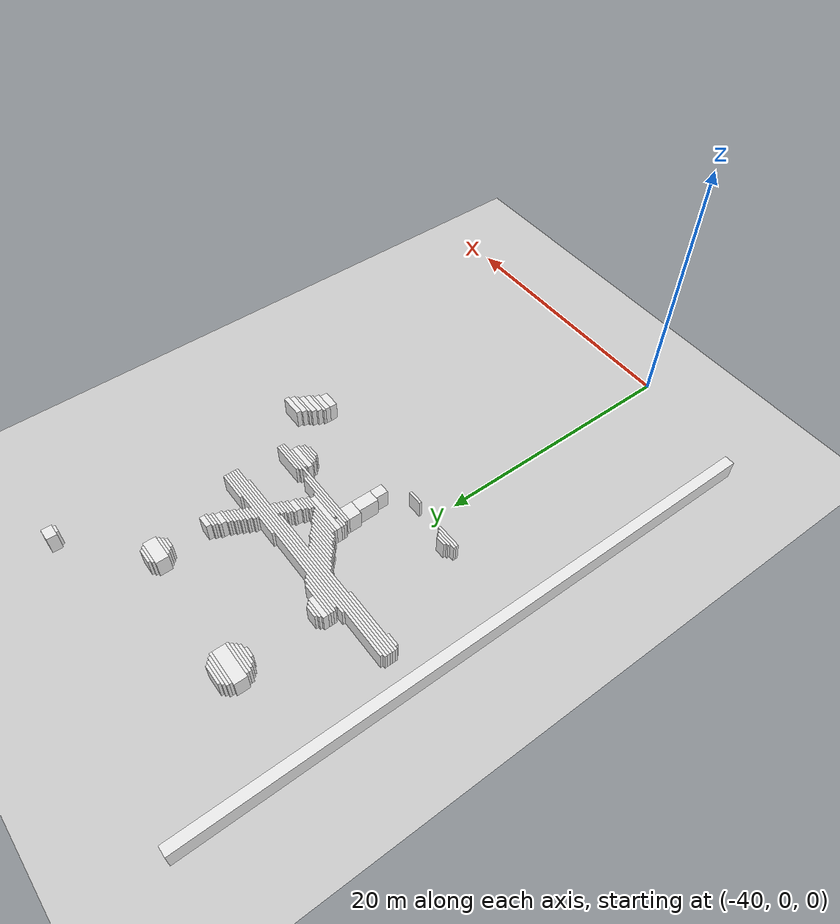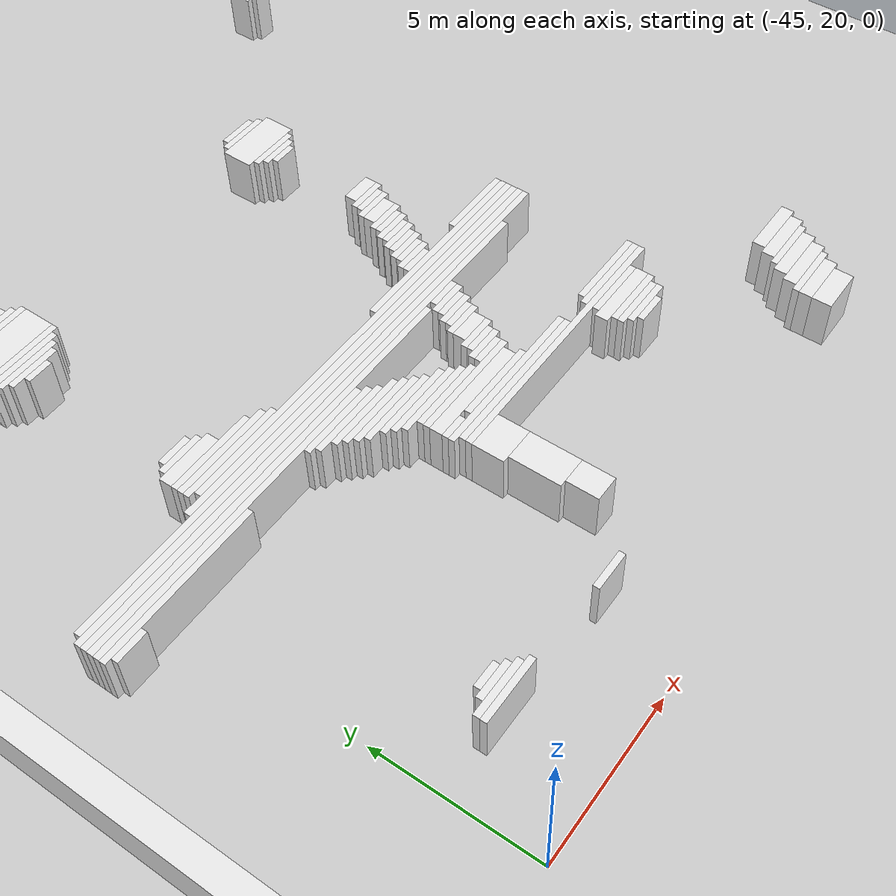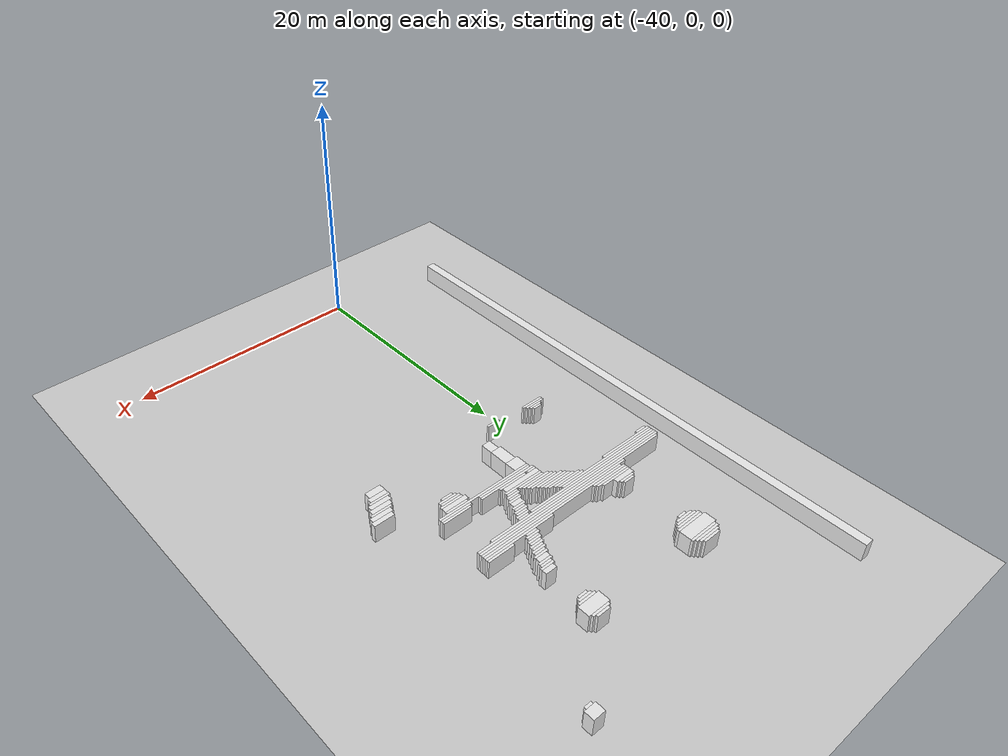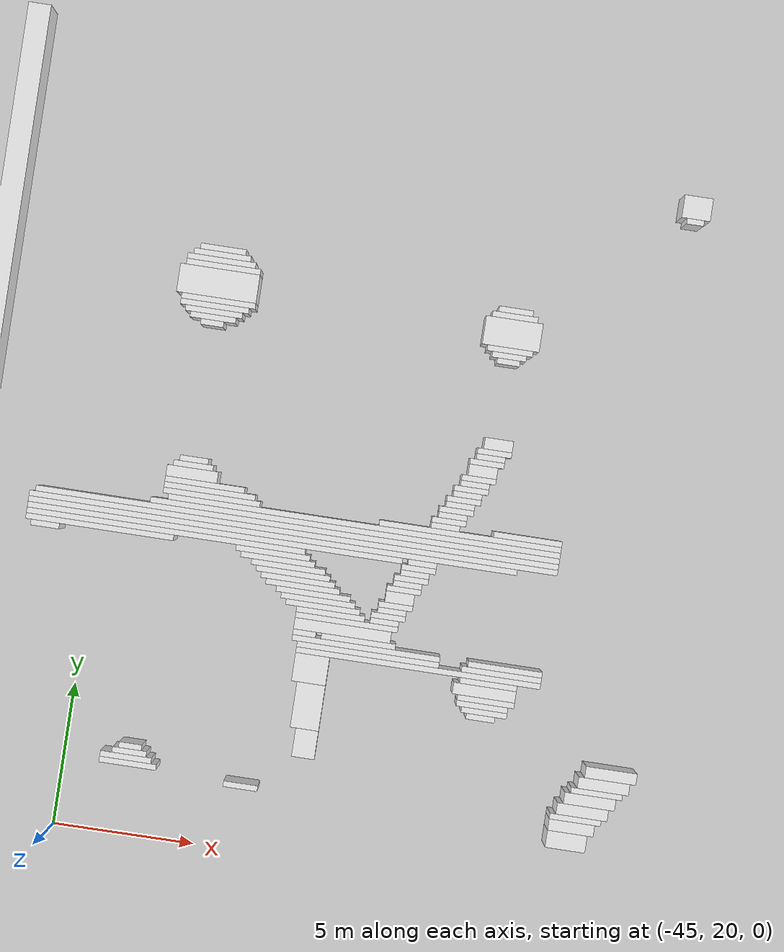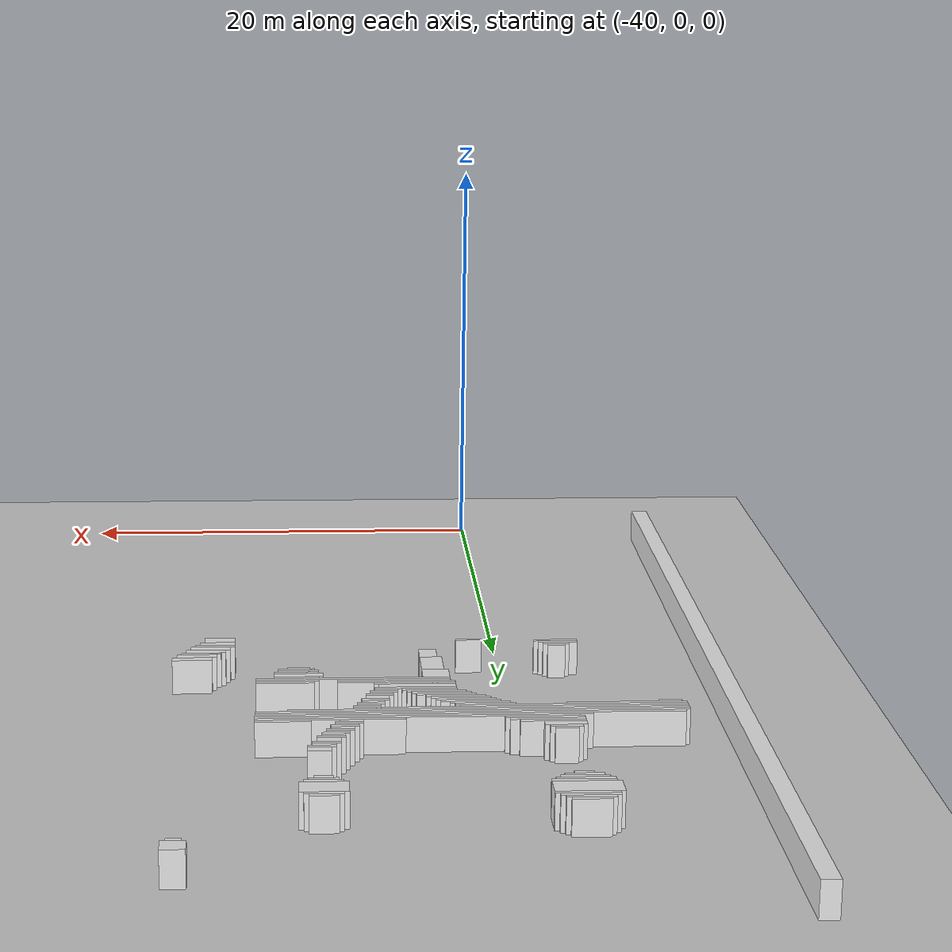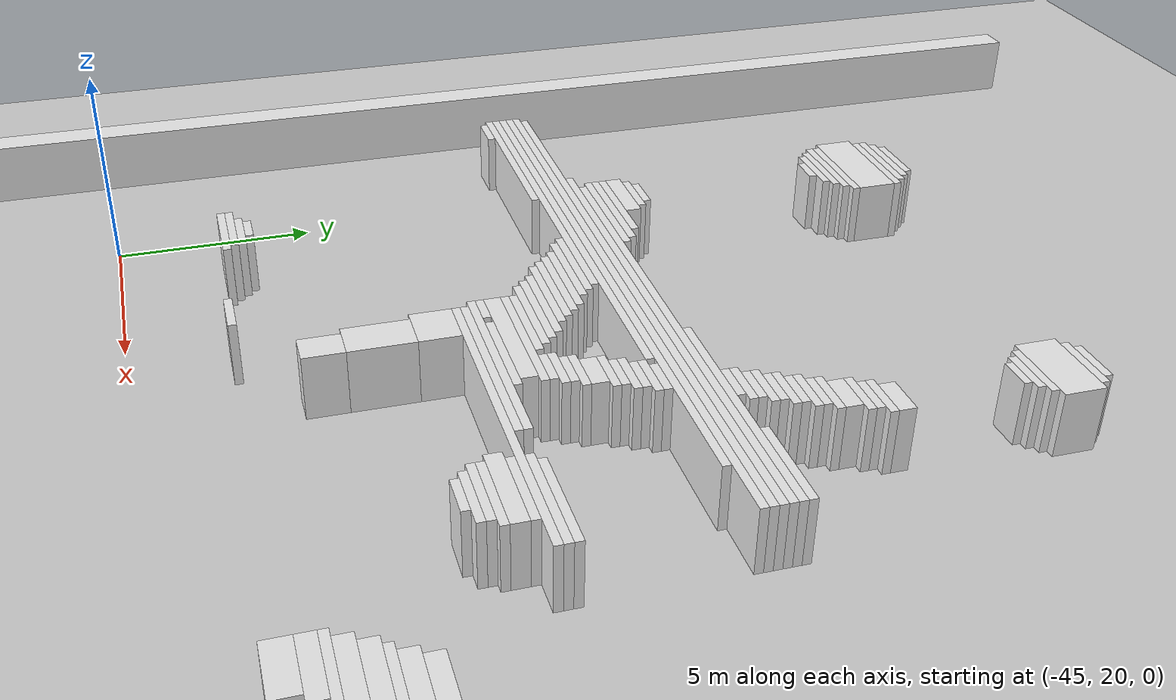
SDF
<sdf version="1.7">
 <world name="default">
  <model name="ground_plane">
   <static>1</static>
   <link name="link">
    <collision name="collision">
     <geometry><plane><normal>0 0 1</normal><size>120 120</size></plane></geometry>
    </collision>
    <visual name="visual">
     <geometry><plane><normal>0 0 1</normal><size>120 120</size></plane></geometry>
     <material>
      <script><uri>file://media/materials/scripts/gazebo.material</uri><name>Gazebo/Grey</name></script>
     </material>
    </visual>
   </link>
  </model>
  <model name="random_complex_03_model">
   <static>1</static>
   <link name="obs_76">
    <pose>-25.9000 44.8000 0.8000 0 0 0</pose>
    <collision name="obs_76_col"><geometry><box><size>1.0000 0.8000 1.6000</size></box></geometry></collision>
    <visual name="obs_76_vis">
     <geometry><box><size>1.0000 0.8000 1.6000</size></box></geometry>
     <material>
      <script><uri>file://media/materials/scripts/gazebo.material</uri><name>Gazebo/White</name></script>
     </material>
    </visual>
   </link>
   <link name="obs_83">
    <pose>-25.9000 44.3000 0.8000 0 0 0</pose>
    <collision name="obs_83_col"><geometry><box><size>0.6000 0.2000 1.6000</size></box></geometry></collision>
    <visual name="obs_83_vis">
     <geometry><box><size>0.6000 0.2000 1.6000</size></box></geometry>
     <material>
      <script><uri>file://media/materials/scripts/gazebo.material</uri><name>Gazebo/White</name></script>
     </material>
    </visual>
   </link>
   <link name="obs_166">
    <pose>-42.0000 40.9000 0.8000 0 0 0</pose>
    <collision name="obs_166_col"><geometry><box><size>1.6000 0.2000 1.6000</size></box></geometry></collision>
    <visual name="obs_166_vis">
     <geometry><box><size>1.6000 0.2000 1.6000</size></box></geometry>
     <material>
      <script><uri>file://media/materials/scripts/gazebo.material</uri><name>Gazebo/White</name></script>
     </material>
    </visual>
   </link>
   <link name="obs_170">
    <pose>-42.0000 40.7000 0.8000 0 0 0</pose>
    <collision name="obs_170_col"><geometry><box><size>2.0000 0.2000 1.6000</size></box></geometry></collision>
    <visual name="obs_170_vis">
     <geometry><box><size>2.0000 0.2000 1.6000</size></box></geometry>
     <material>
      <script><uri>file://media/materials/scripts/gazebo.material</uri><name>Gazebo/White</name></script>
     </material>
    </visual>
   </link>
   <link name="obs_174">
    <pose>-42.0000 40.5000 0.8000 0 0 0</pose>
    <collision name="obs_174_col"><geometry><box><size>2.4000 0.2000 1.6000</size></box></geometry></collision>
    <visual name="obs_174_vis">
     <geometry><box><size>2.4000 0.2000 1.6000</size></box></geometry>
     <material>
      <script><uri>file://media/materials/scripts/gazebo.material</uri><name>Gazebo/White</name></script>
     </material>
    </visual>
   </link>
   <link name="obs_179">
    <pose>-41.9000 40.3000 0.8000 0 0 0</pose>
    <collision name="obs_179_col"><geometry><box><size>2.6000 0.2000 1.6000</size></box></geometry></collision>
    <visual name="obs_179_vis">
     <geometry><box><size>2.6000 0.2000 1.6000</size></box></geometry>
     <material>
      <script><uri>file://media/materials/scripts/gazebo.material</uri><name>Gazebo/White</name></script>
     </material>
    </visual>
   </link>
   <link name="obs_180">
    <pose>-31.6000 40.3000 0.8000 0 0 0</pose>
    <collision name="obs_180_col"><geometry><box><size>1.2000 0.2000 1.6000</size></box></geometry></collision>
    <visual name="obs_180_vis">
     <geometry><box><size>1.2000 0.2000 1.6000</size></box></geometry>
     <material>
      <script><uri>file://media/materials/scripts/gazebo.material</uri><name>Gazebo/White</name></script>
     </material>
    </visual>
   </link>
   <link name="obs_186">
    <pose>-31.6000 40.1000 0.8000 0 0 0</pose>
    <collision name="obs_186_col"><geometry><box><size>1.6000 0.2000 1.6000</size></box></geometry></collision>
    <visual name="obs_186_vis">
     <geometry><box><size>1.6000 0.2000 1.6000</size></box></geometry>
     <material>
      <script><uri>file://media/materials/scripts/gazebo.material</uri><name>Gazebo/White</name></script>
     </material>
    </visual>
   </link>
   <link name="obs_206">
    <pose>-42.0000 39.7000 0.8000 0 0 0</pose>
    <collision name="obs_206_col"><geometry><box><size>2.8000 1.0000 1.6000</size></box></geometry></collision>
    <visual name="obs_206_vis">
     <geometry><box><size>2.8000 1.0000 1.6000</size></box></geometry>
     <material>
      <script><uri>file://media/materials/scripts/gazebo.material</uri><name>Gazebo/White</name></script>
     </material>
    </visual>
   </link>
   <link name="obs_213">
    <pose>-31.6000 39.5000 0.8000 0 0 0</pose>
    <collision name="obs_213_col"><geometry><box><size>2.0000 1.0000 1.6000</size></box></geometry></collision>
    <visual name="obs_213_vis">
     <geometry><box><size>2.0000 1.0000 1.6000</size></box></geometry>
     <material>
      <script><uri>file://media/materials/scripts/gazebo.material</uri><name>Gazebo/White</name></script>
     </material>
    </visual>
   </link>
   <link name="obs_215">
    <pose>-41.9000 39.1000 0.8000 0 0 0</pose>
    <collision name="obs_215_col"><geometry><box><size>2.6000 0.2000 1.6000</size></box></geometry></collision>
    <visual name="obs_215_vis">
     <geometry><box><size>2.6000 0.2000 1.6000</size></box></geometry>
     <material>
      <script><uri>file://media/materials/scripts/gazebo.material</uri><name>Gazebo/White</name></script>
     </material>
    </visual>
   </link>
   <link name="obs_222">
    <pose>-42.0000 38.9000 0.8000 0 0 0</pose>
    <collision name="obs_222_col"><geometry><box><size>2.4000 0.2000 1.6000</size></box></geometry></collision>
    <visual name="obs_222_vis">
     <geometry><box><size>2.4000 0.2000 1.6000</size></box></geometry>
     <material>
      <script><uri>file://media/materials/scripts/gazebo.material</uri><name>Gazebo/White</name></script>
     </material>
    </visual>
   </link>
   <link name="obs_223">
    <pose>-31.6000 38.9000 0.8000 0 0 0</pose>
    <collision name="obs_223_col"><geometry><box><size>1.6000 0.2000 1.6000</size></box></geometry></collision>
    <visual name="obs_223_vis">
     <geometry><box><size>1.6000 0.2000 1.6000</size></box></geometry>
     <material>
      <script><uri>file://media/materials/scripts/gazebo.material</uri><name>Gazebo/White</name></script>
     </material>
    </visual>
   </link>
   <link name="obs_229">
    <pose>-42.0000 38.7000 0.8000 0 0 0</pose>
    <collision name="obs_229_col"><geometry><box><size>2.0000 0.2000 1.6000</size></box></geometry></collision>
    <visual name="obs_229_vis">
     <geometry><box><size>2.0000 0.2000 1.6000</size></box></geometry>
     <material>
      <script><uri>file://media/materials/scripts/gazebo.material</uri><name>Gazebo/White</name></script>
     </material>
    </visual>
   </link>
   <link name="obs_230">
    <pose>-31.6000 38.7000 0.8000 0 0 0</pose>
    <collision name="obs_230_col"><geometry><box><size>1.2000 0.2000 1.6000</size></box></geometry></collision>
    <visual name="obs_230_vis">
     <geometry><box><size>1.2000 0.2000 1.6000</size></box></geometry>
     <material>
      <script><uri>file://media/materials/scripts/gazebo.material</uri><name>Gazebo/White</name></script>
     </material>
    </visual>
   </link>
   <link name="obs_237">
    <pose>-42.0000 38.5000 0.8000 0 0 0</pose>
    <collision name="obs_237_col"><geometry><box><size>1.6000 0.2000 1.6000</size></box></geometry></collision>
    <visual name="obs_237_vis">
     <geometry><box><size>1.6000 0.2000 1.6000</size></box></geometry>
     <material>
      <script><uri>file://media/materials/scripts/gazebo.material</uri><name>Gazebo/White</name></script>
     </material>
    </visual>
   </link>
   <link name="obs_238">
    <pose>-31.6000 38.5000 0.8000 0 0 0</pose>
    <collision name="obs_238_col"><geometry><box><size>0.8000 0.2000 1.6000</size></box></geometry></collision>
    <visual name="obs_238_vis">
     <geometry><box><size>0.8000 0.2000 1.6000</size></box></geometry>
     <material>
      <script><uri>file://media/materials/scripts/gazebo.material</uri><name>Gazebo/White</name></script>
     </material>
    </visual>
   </link>
   <link name="obs_242">
    <pose>-42.0000 38.3000 0.8000 0 0 0</pose>
    <collision name="obs_242_col"><geometry><box><size>0.8000 0.2000 1.6000</size></box></geometry></collision>
    <visual name="obs_242_vis">
     <geometry><box><size>0.8000 0.2000 1.6000</size></box></geometry>
     <material>
      <script><uri>file://media/materials/scripts/gazebo.material</uri><name>Gazebo/White</name></script>
     </material>
    </visual>
   </link>
   <link name="obs_312">
    <pose>-31.5000 35.6000 0.8000 0 0 0</pose>
    <collision name="obs_312_col"><geometry><box><size>1.0000 0.4000 1.6000</size></box></geometry></collision>
    <visual name="obs_312_vis">
     <geometry><box><size>1.0000 0.4000 1.6000</size></box></geometry>
     <material>
      <script><uri>file://media/materials/scripts/gazebo.material</uri><name>Gazebo/White</name></script>
     </material>
    </visual>
   </link>
   <link name="obs_319">
    <pose>-31.6000 35.3000 0.8000 0 0 0</pose>
    <collision name="obs_319_col"><geometry><box><size>1.2000 0.2000 1.6000</size></box></geometry></collision>
    <visual name="obs_319_vis">
     <geometry><box><size>1.2000 0.2000 1.6000</size></box></geometry>
     <material>
      <script><uri>file://media/materials/scripts/gazebo.material</uri><name>Gazebo/White</name></script>
     </material>
    </visual>
   </link>
   <link name="obs_328">
    <pose>-31.7000 35.1000 0.8000 0 0 0</pose>
    <collision name="obs_328_col"><geometry><box><size>1.0000 0.2000 1.6000</size></box></geometry></collision>
    <visual name="obs_328_vis">
     <geometry><box><size>1.0000 0.2000 1.6000</size></box></geometry>
     <material>
      <script><uri>file://media/materials/scripts/gazebo.material</uri><name>Gazebo/White</name></script>
     </material>
    </visual>
   </link>
   <link name="obs_336">
    <pose>-31.8000 34.9000 0.8000 0 0 0</pose>
    <collision name="obs_336_col"><geometry><box><size>1.2000 0.2000 1.6000</size></box></geometry></collision>
    <visual name="obs_336_vis">
     <geometry><box><size>1.2000 0.2000 1.6000</size></box></geometry>
     <material>
      <script><uri>file://media/materials/scripts/gazebo.material</uri><name>Gazebo/White</name></script>
     </material>
    </visual>
   </link>
   <link name="obs_355">
    <pose>-31.9000 34.6000 0.8000 0 0 0</pose>
    <collision name="obs_355_col"><geometry><box><size>1.0000 0.4000 1.6000</size></box></geometry></collision>
    <visual name="obs_355_vis">
     <geometry><box><size>1.0000 0.4000 1.6000</size></box></geometry>
     <material>
      <script><uri>file://media/materials/scripts/gazebo.material</uri><name>Gazebo/White</name></script>
     </material>
    </visual>
   </link>
   <link name="obs_365">
    <pose>-32.0000 34.3000 0.8000 0 0 0</pose>
    <collision name="obs_365_col"><geometry><box><size>1.2000 0.2000 1.6000</size></box></geometry></collision>
    <visual name="obs_365_vis">
     <geometry><box><size>1.2000 0.2000 1.6000</size></box></geometry>
     <material>
      <script><uri>file://media/materials/scripts/gazebo.material</uri><name>Gazebo/White</name></script>
     </material>
    </visual>
   </link>
   <link name="obs_374">
    <pose>-32.1000 34.1000 0.8000 0 0 0</pose>
    <collision name="obs_374_col"><geometry><box><size>1.0000 0.2000 1.6000</size></box></geometry></collision>
    <visual name="obs_374_vis">
     <geometry><box><size>1.0000 0.2000 1.6000</size></box></geometry>
     <material>
      <script><uri>file://media/materials/scripts/gazebo.material</uri><name>Gazebo/White</name></script>
     </material>
    </visual>
   </link>
   <link name="obs_380">
    <pose>-32.2000 33.9000 0.8000 0 0 0</pose>
    <collision name="obs_380_col"><geometry><box><size>1.2000 0.2000 1.6000</size></box></geometry></collision>
    <visual name="obs_380_vis">
     <geometry><box><size>1.2000 0.2000 1.6000</size></box></geometry>
     <material>
      <script><uri>file://media/materials/scripts/gazebo.material</uri><name>Gazebo/White</name></script>
     </material>
    </visual>
   </link>
   <link name="obs_389">
    <pose>-32.3000 33.7000 0.8000 0 0 0</pose>
    <collision name="obs_389_col"><geometry><box><size>1.0000 0.2000 1.6000</size></box></geometry></collision>
    <visual name="obs_389_vis">
     <geometry><box><size>1.0000 0.2000 1.6000</size></box></geometry>
     <material>
      <script><uri>file://media/materials/scripts/gazebo.material</uri><name>Gazebo/White</name></script>
     </material>
    </visual>
   </link>
   <link name="obs_395">
    <pose>-41.9000 33.5000 0.8000 0 0 0</pose>
    <collision name="obs_395_col"><geometry><box><size>1.0000 0.2000 1.6000</size></box></geometry></collision>
    <visual name="obs_395_vis">
     <geometry><box><size>1.0000 0.2000 1.6000</size></box></geometry>
     <material>
      <script><uri>file://media/materials/scripts/gazebo.material</uri><name>Gazebo/White</name></script>
     </material>
    </visual>
   </link>
   <link name="obs_396">
    <pose>-32.4000 33.5000 0.8000 0 0 0</pose>
    <collision name="obs_396_col"><geometry><box><size>1.2000 0.2000 1.6000</size></box></geometry></collision>
    <visual name="obs_396_vis">
     <geometry><box><size>1.2000 0.2000 1.6000</size></box></geometry>
     <material>
      <script><uri>file://media/materials/scripts/gazebo.material</uri><name>Gazebo/White</name></script>
     </material>
    </visual>
   </link>
   <link name="obs_405">
    <pose>-41.9000 33.3000 0.8000 0 0 0</pose>
    <collision name="obs_405_col"><geometry><box><size>1.4000 0.2000 1.6000</size></box></geometry></collision>
    <visual name="obs_405_vis">
     <geometry><box><size>1.4000 0.2000 1.6000</size></box></geometry>
     <material>
      <script><uri>file://media/materials/scripts/gazebo.material</uri><name>Gazebo/White</name></script>
     </material>
    </visual>
   </link>
   <link name="obs_406">
    <pose>-32.5000 33.3000 0.8000 0 0 0</pose>
    <collision name="obs_406_col"><geometry><box><size>1.0000 0.2000 1.6000</size></box></geometry></collision>
    <visual name="obs_406_vis">
     <geometry><box><size>1.0000 0.2000 1.6000</size></box></geometry>
     <material>
      <script><uri>file://media/materials/scripts/gazebo.material</uri><name>Gazebo/White</name></script>
     </material>
    </visual>
   </link>
   <link name="obs_414">
    <pose>-32.6000 33.1000 0.8000 0 0 0</pose>
    <collision name="obs_414_col"><geometry><box><size>1.2000 0.2000 1.6000</size></box></geometry></collision>
    <visual name="obs_414_vis">
     <geometry><box><size>1.2000 0.2000 1.6000</size></box></geometry>
     <material>
      <script><uri>file://media/materials/scripts/gazebo.material</uri><name>Gazebo/White</name></script>
     </material>
    </visual>
   </link>
   <link name="obs_419">
    <pose>-41.9000 33.0000 0.8000 0 0 0</pose>
    <collision name="obs_419_col"><geometry><box><size>1.8000 0.4000 1.6000</size></box></geometry></collision>
    <visual name="obs_419_vis">
     <geometry><box><size>1.8000 0.4000 1.6000</size></box></geometry>
     <material>
      <script><uri>file://media/materials/scripts/gazebo.material</uri><name>Gazebo/White</name></script>
     </material>
    </visual>
   </link>
   <link name="obs_421">
    <pose>-32.7000 32.9000 0.8000 0 0 0</pose>
    <collision name="obs_421_col"><geometry><box><size>1.0000 0.2000 1.6000</size></box></geometry></collision>
    <visual name="obs_421_vis">
     <geometry><box><size>1.0000 0.2000 1.6000</size></box></geometry>
     <material>
      <script><uri>file://media/materials/scripts/gazebo.material</uri><name>Gazebo/White</name></script>
     </material>
    </visual>
   </link>
   <link name="obs_430">
    <pose>-41.4000 32.7000 0.8000 0 0 0</pose>
    <collision name="obs_430_col"><geometry><box><size>2.8000 0.2000 1.6000</size></box></geometry></collision>
    <visual name="obs_430_vis">
     <geometry><box><size>2.8000 0.2000 1.6000</size></box></geometry>
     <material>
      <script><uri>file://media/materials/scripts/gazebo.material</uri><name>Gazebo/White</name></script>
     </material>
    </visual>
   </link>
   <link name="obs_431">
    <pose>-32.8000 32.7000 0.8000 0 0 0</pose>
    <collision name="obs_431_col"><geometry><box><size>1.2000 0.2000 1.6000</size></box></geometry></collision>
    <visual name="obs_431_vis">
     <geometry><box><size>1.2000 0.2000 1.6000</size></box></geometry>
     <material>
      <script><uri>file://media/materials/scripts/gazebo.material</uri><name>Gazebo/White</name></script>
     </material>
    </visual>
   </link>
   <link name="obs_438">
    <pose>-41.2000 32.5000 0.8000 0 0 0</pose>
    <collision name="obs_438_col"><geometry><box><size>3.2000 0.2000 1.6000</size></box></geometry></collision>
    <visual name="obs_438_vis">
     <geometry><box><size>3.2000 0.2000 1.6000</size></box></geometry>
     <material>
      <script><uri>file://media/materials/scripts/gazebo.material</uri><name>Gazebo/White</name></script>
     </material>
    </visual>
   </link>
   <link name="obs_439">
    <pose>-32.9000 32.5000 0.8000 0 0 0</pose>
    <collision name="obs_439_col"><geometry><box><size>1.0000 0.2000 1.6000</size></box></geometry></collision>
    <visual name="obs_439_vis">
     <geometry><box><size>1.0000 0.2000 1.6000</size></box></geometry>
     <material>
      <script><uri>file://media/materials/scripts/gazebo.material</uri><name>Gazebo/White</name></script>
     </material>
    </visual>
   </link>
   <link name="obs_440">
    <pose>-30.0000 32.5000 0.8000 0 0 0</pose>
    <collision name="obs_440_col"><geometry><box><size>2.4000 0.2000 1.6000</size></box></geometry></collision>
    <visual name="obs_440_vis">
     <geometry><box><size>2.4000 0.2000 1.6000</size></box></geometry>
     <material>
      <script><uri>file://media/materials/scripts/gazebo.material</uri><name>Gazebo/White</name></script>
     </material>
    </visual>
   </link>
   <link name="obs_447">
    <pose>-41.1000 32.3000 0.8000 0 0 0</pose>
    <collision name="obs_447_col"><geometry><box><size>3.4000 0.2000 1.6000</size></box></geometry></collision>
    <visual name="obs_447_vis">
     <geometry><box><size>3.4000 0.2000 1.6000</size></box></geometry>
     <material>
      <script><uri>file://media/materials/scripts/gazebo.material</uri><name>Gazebo/White</name></script>
     </material>
    </visual>
   </link>
   <link name="obs_448">
    <pose>-32.0000 32.3000 0.8000 0 0 0</pose>
    <collision name="obs_448_col"><geometry><box><size>6.4000 0.2000 1.6000</size></box></geometry></collision>
    <visual name="obs_448_vis">
     <geometry><box><size>6.4000 0.2000 1.6000</size></box></geometry>
     <material>
      <script><uri>file://media/materials/scripts/gazebo.material</uri><name>Gazebo/White</name></script>
     </material>
    </visual>
   </link>
   <link name="obs_455">
    <pose>-35.7000 32.1000 0.8000 0 0 0</pose>
    <collision name="obs_455_col"><geometry><box><size>13.8000 0.2000 1.6000</size></box></geometry></collision>
    <visual name="obs_455_vis">
     <geometry><box><size>13.8000 0.2000 1.6000</size></box></geometry>
     <material>
      <script><uri>file://media/materials/scripts/gazebo.material</uri><name>Gazebo/White</name></script>
     </material>
    </visual>
   </link>
   <link name="obs_463">
    <pose>-36.0000 31.9000 0.8000 0 0 0</pose>
    <collision name="obs_463_col"><geometry><box><size>14.4000 0.2000 1.6000</size></box></geometry></collision>
    <visual name="obs_463_vis">
     <geometry><box><size>14.4000 0.2000 1.6000</size></box></geometry>
     <material>
      <script><uri>file://media/materials/scripts/gazebo.material</uri><name>Gazebo/White</name></script>
     </material>
    </visual>
   </link>
   <link name="obs_471">
    <pose>-38.0000 31.7000 0.8000 0 0 0</pose>
    <collision name="obs_471_col"><geometry><box><size>18.4000 0.2000 1.6000</size></box></geometry></collision>
    <visual name="obs_471_vis">
     <geometry><box><size>18.4000 0.2000 1.6000</size></box></geometry>
     <material>
      <script><uri>file://media/materials/scripts/gazebo.material</uri><name>Gazebo/White</name></script>
     </material>
    </visual>
   </link>
   <link name="obs_480">
    <pose>-38.1000 31.5000 0.8000 0 0 0</pose>
    <collision name="obs_480_col"><geometry><box><size>18.6000 0.2000 1.6000</size></box></geometry></collision>
    <visual name="obs_480_vis">
     <geometry><box><size>18.6000 0.2000 1.6000</size></box></geometry>
     <material>
      <script><uri>file://media/materials/scripts/gazebo.material</uri><name>Gazebo/White</name></script>
     </material>
    </visual>
   </link>
   <link name="obs_490">
    <pose>-38.8000 31.3000 0.8000 0 0 0</pose>
    <collision name="obs_490_col"><geometry><box><size>17.2000 0.2000 1.6000</size></box></geometry></collision>
    <visual name="obs_490_vis">
     <geometry><box><size>17.2000 0.2000 1.6000</size></box></geometry>
     <material>
      <script><uri>file://media/materials/scripts/gazebo.material</uri><name>Gazebo/White</name></script>
     </material>
    </visual>
   </link>
   <link name="obs_495">
    <pose>-40.8000 31.1000 0.8000 0 0 0</pose>
    <collision name="obs_495_col"><geometry><box><size>13.2000 0.2000 1.6000</size></box></geometry></collision>
    <visual name="obs_495_vis">
     <geometry><box><size>13.2000 0.2000 1.6000</size></box></geometry>
     <material>
      <script><uri>file://media/materials/scripts/gazebo.material</uri><name>Gazebo/White</name></script>
     </material>
    </visual>
   </link>
   <link name="obs_496">
    <pose>-33.5000 31.1000 0.8000 0 0 0</pose>
    <collision name="obs_496_col"><geometry><box><size>1.0000 0.2000 1.6000</size></box></geometry></collision>
    <visual name="obs_496_vis">
     <geometry><box><size>1.0000 0.2000 1.6000</size></box></geometry>
     <material>
      <script><uri>file://media/materials/scripts/gazebo.material</uri><name>Gazebo/White</name></script>
     </material>
    </visual>
   </link>
   <link name="obs_502">
    <pose>-42.5000 30.9000 0.8000 0 0 0</pose>
    <collision name="obs_502_col"><geometry><box><size>9.8000 0.2000 1.6000</size></box></geometry></collision>
    <visual name="obs_502_vis">
     <geometry><box><size>9.8000 0.2000 1.6000</size></box></geometry>
     <material>
      <script><uri>file://media/materials/scripts/gazebo.material</uri><name>Gazebo/White</name></script>
     </material>
    </visual>
   </link>
   <link name="obs_503">
    <pose>-33.6000 30.9000 0.8000 0 0 0</pose>
    <collision name="obs_503_col"><geometry><box><size>1.2000 0.2000 1.6000</size></box></geometry></collision>
    <visual name="obs_503_vis">
     <geometry><box><size>1.2000 0.2000 1.6000</size></box></geometry>
     <material>
      <script><uri>file://media/materials/scripts/gazebo.material</uri><name>Gazebo/White</name></script>
     </material>
    </visual>
   </link>
   <link name="obs_508">
    <pose>-44.8000 30.7000 0.8000 0 0 0</pose>
    <collision name="obs_508_col"><geometry><box><size>5.2000 0.2000 1.6000</size></box></geometry></collision>
    <visual name="obs_508_vis">
     <geometry><box><size>5.2000 0.2000 1.6000</size></box></geometry>
     <material>
      <script><uri>file://media/materials/scripts/gazebo.material</uri><name>Gazebo/White</name></script>
     </material>
    </visual>
   </link>
   <link name="obs_509">
    <pose>-38.7000 30.7000 0.8000 0 0 0</pose>
    <collision name="obs_509_col"><geometry><box><size>2.6000 0.2000 1.6000</size></box></geometry></collision>
    <visual name="obs_509_vis">
     <geometry><box><size>2.6000 0.2000 1.6000</size></box></geometry>
     <material>
      <script><uri>file://media/materials/scripts/gazebo.material</uri><name>Gazebo/White</name></script>
     </material>
    </visual>
   </link>
   <link name="obs_510">
    <pose>-33.7000 30.7000 0.8000 0 0 0</pose>
    <collision name="obs_510_col"><geometry><box><size>1.0000 0.2000 1.6000</size></box></geometry></collision>
    <visual name="obs_510_vis">
     <geometry><box><size>1.0000 0.2000 1.6000</size></box></geometry>
     <material>
      <script><uri>file://media/materials/scripts/gazebo.material</uri><name>Gazebo/White</name></script>
     </material>
    </visual>
   </link>
   <link name="obs_515">
    <pose>-46.7000 30.5000 0.8000 0 0 0</pose>
    <collision name="obs_515_col"><geometry><box><size>1.0000 0.2000 1.6000</size></box></geometry></collision>
    <visual name="obs_515_vis">
     <geometry><box><size>1.0000 0.2000 1.6000</size></box></geometry>
     <material>
      <script><uri>file://media/materials/scripts/gazebo.material</uri><name>Gazebo/White</name></script>
     </material>
    </visual>
   </link>
   <link name="obs_516">
    <pose>-38.5000 30.5000 0.8000 0 0 0</pose>
    <collision name="obs_516_col"><geometry><box><size>2.6000 0.2000 1.6000</size></box></geometry></collision>
    <visual name="obs_516_vis">
     <geometry><box><size>2.6000 0.2000 1.6000</size></box></geometry>
     <material>
      <script><uri>file://media/materials/scripts/gazebo.material</uri><name>Gazebo/White</name></script>
     </material>
    </visual>
   </link>
   <link name="obs_517">
    <pose>-33.8000 30.5000 0.8000 0 0 0</pose>
    <collision name="obs_517_col"><geometry><box><size>1.2000 0.2000 1.6000</size></box></geometry></collision>
    <visual name="obs_517_vis">
     <geometry><box><size>1.2000 0.2000 1.6000</size></box></geometry>
     <material>
      <script><uri>file://media/materials/scripts/gazebo.material</uri><name>Gazebo/White</name></script>
     </material>
    </visual>
   </link>
   <link name="obs_523">
    <pose>-38.1000 30.3000 0.8000 0 0 0</pose>
    <collision name="obs_523_col"><geometry><box><size>2.6000 0.2000 1.6000</size></box></geometry></collision>
    <visual name="obs_523_vis">
     <geometry><box><size>2.6000 0.2000 1.6000</size></box></geometry>
     <material>
      <script><uri>file://media/materials/scripts/gazebo.material</uri><name>Gazebo/White</name></script>
     </material>
    </visual>
   </link>
   <link name="obs_524">
    <pose>-33.9000 30.3000 0.8000 0 0 0</pose>
    <collision name="obs_524_col"><geometry><box><size>1.0000 0.2000 1.6000</size></box></geometry></collision>
    <visual name="obs_524_vis">
     <geometry><box><size>1.0000 0.2000 1.6000</size></box></geometry>
     <material>
      <script><uri>file://media/materials/scripts/gazebo.material</uri><name>Gazebo/White</name></script>
     </material>
    </visual>
   </link>
   <link name="obs_532">
    <pose>-37.9000 30.1000 0.8000 0 0 0</pose>
    <collision name="obs_532_col"><geometry><box><size>2.6000 0.2000 1.6000</size></box></geometry></collision>
    <visual name="obs_532_vis">
     <geometry><box><size>2.6000 0.2000 1.6000</size></box></geometry>
     <material>
      <script><uri>file://media/materials/scripts/gazebo.material</uri><name>Gazebo/White</name></script>
     </material>
    </visual>
   </link>
   <link name="obs_533">
    <pose>-34.0000 30.1000 0.8000 0 0 0</pose>
    <collision name="obs_533_col"><geometry><box><size>1.2000 0.2000 1.6000</size></box></geometry></collision>
    <visual name="obs_533_vis">
     <geometry><box><size>1.2000 0.2000 1.6000</size></box></geometry>
     <material>
      <script><uri>file://media/materials/scripts/gazebo.material</uri><name>Gazebo/White</name></script>
     </material>
    </visual>
   </link>
   <link name="obs_539">
    <pose>-37.7000 29.9000 0.8000 0 0 0</pose>
    <collision name="obs_539_col"><geometry><box><size>2.6000 0.2000 1.6000</size></box></geometry></collision>
    <visual name="obs_539_vis">
     <geometry><box><size>2.6000 0.2000 1.6000</size></box></geometry>
     <material>
      <script><uri>file://media/materials/scripts/gazebo.material</uri><name>Gazebo/White</name></script>
     </material>
    </visual>
   </link>
   <link name="obs_547">
    <pose>-34.1000 29.8000 0.8000 0 0 0</pose>
    <collision name="obs_547_col"><geometry><box><size>1.0000 0.4000 1.6000</size></box></geometry></collision>
    <visual name="obs_547_vis">
     <geometry><box><size>1.0000 0.4000 1.6000</size></box></geometry>
     <material>
      <script><uri>file://media/materials/scripts/gazebo.material</uri><name>Gazebo/White</name></script>
     </material>
    </visual>
   </link>
   <link name="obs_549">
    <pose>-37.5000 29.7000 0.8000 0 0 0</pose>
    <collision name="obs_549_col"><geometry><box><size>2.6000 0.2000 1.6000</size></box></geometry></collision>
    <visual name="obs_549_vis">
     <geometry><box><size>2.6000 0.2000 1.6000</size></box></geometry>
     <material>
      <script><uri>file://media/materials/scripts/gazebo.material</uri><name>Gazebo/White</name></script>
     </material>
    </visual>
   </link>
   <link name="obs_557">
    <pose>-37.1000 29.5000 0.8000 0 0 0</pose>
    <collision name="obs_557_col"><geometry><box><size>2.6000 0.2000 1.6000</size></box></geometry></collision>
    <visual name="obs_557_vis">
     <geometry><box><size>2.6000 0.2000 1.6000</size></box></geometry>
     <material>
      <script><uri>file://media/materials/scripts/gazebo.material</uri><name>Gazebo/White</name></script>
     </material>
    </visual>
   </link>
   <link name="obs_558">
    <pose>-34.2000 29.5000 0.8000 0 0 0</pose>
    <collision name="obs_558_col"><geometry><box><size>1.2000 0.2000 1.6000</size></box></geometry></collision>
    <visual name="obs_558_vis">
     <geometry><box><size>1.2000 0.2000 1.6000</size></box></geometry>
     <material>
      <script><uri>file://media/materials/scripts/gazebo.material</uri><name>Gazebo/White</name></script>
     </material>
    </visual>
   </link>
   <link name="obs_566">
    <pose>-36.9000 29.3000 0.8000 0 0 0</pose>
    <collision name="obs_566_col"><geometry><box><size>2.6000 0.2000 1.6000</size></box></geometry></collision>
    <visual name="obs_566_vis">
     <geometry><box><size>2.6000 0.2000 1.6000</size></box></geometry>
     <material>
      <script><uri>file://media/materials/scripts/gazebo.material</uri><name>Gazebo/White</name></script>
     </material>
    </visual>
   </link>
   <link name="obs_567">
    <pose>-34.3000 29.3000 0.8000 0 0 0</pose>
    <collision name="obs_567_col"><geometry><box><size>1.0000 0.2000 1.6000</size></box></geometry></collision>
    <visual name="obs_567_vis">
     <geometry><box><size>1.0000 0.2000 1.6000</size></box></geometry>
     <material>
      <script><uri>file://media/materials/scripts/gazebo.material</uri><name>Gazebo/White</name></script>
     </material>
    </visual>
   </link>
   <link name="obs_575">
    <pose>-36.7000 29.1000 0.8000 0 0 0</pose>
    <collision name="obs_575_col"><geometry><box><size>2.6000 0.2000 1.6000</size></box></geometry></collision>
    <visual name="obs_575_vis">
     <geometry><box><size>2.6000 0.2000 1.6000</size></box></geometry>
     <material>
      <script><uri>file://media/materials/scripts/gazebo.material</uri><name>Gazebo/White</name></script>
     </material>
    </visual>
   </link>
   <link name="obs_576">
    <pose>-34.4000 29.1000 0.8000 0 0 0</pose>
    <collision name="obs_576_col"><geometry><box><size>1.2000 0.2000 1.6000</size></box></geometry></collision>
    <visual name="obs_576_vis">
     <geometry><box><size>1.2000 0.2000 1.6000</size></box></geometry>
     <material>
      <script><uri>file://media/materials/scripts/gazebo.material</uri><name>Gazebo/White</name></script>
     </material>
    </visual>
   </link>
   <link name="obs_581">
    <pose>-36.4000 28.9000 0.8000 0 0 0</pose>
    <collision name="obs_581_col"><geometry><box><size>2.4000 0.2000 1.6000</size></box></geometry></collision>
    <visual name="obs_581_vis">
     <geometry><box><size>2.4000 0.2000 1.6000</size></box></geometry>
     <material>
      <script><uri>file://media/materials/scripts/gazebo.material</uri><name>Gazebo/White</name></script>
     </material>
    </visual>
   </link>
   <link name="obs_582">
    <pose>-34.5000 28.9000 0.8000 0 0 0</pose>
    <collision name="obs_582_col"><geometry><box><size>1.0000 0.2000 1.6000</size></box></geometry></collision>
    <visual name="obs_582_vis">
     <geometry><box><size>1.0000 0.2000 1.6000</size></box></geometry>
     <material>
      <script><uri>file://media/materials/scripts/gazebo.material</uri><name>Gazebo/White</name></script>
     </material>
    </visual>
   </link>
   <link name="obs_589">
    <pose>-35.8000 28.7000 0.8000 0 0 0</pose>
    <collision name="obs_589_col"><geometry><box><size>3.6000 0.2000 1.6000</size></box></geometry></collision>
    <visual name="obs_589_vis">
     <geometry><box><size>3.6000 0.2000 1.6000</size></box></geometry>
     <material>
      <script><uri>file://media/materials/scripts/gazebo.material</uri><name>Gazebo/White</name></script>
     </material>
    </visual>
   </link>
   <link name="obs_600">
    <pose>-35.9000 28.4000 0.8000 0 0 0</pose>
    <collision name="obs_600_col"><geometry><box><size>3.4000 0.4000 1.6000</size></box></geometry></collision>
    <visual name="obs_600_vis">
     <geometry><box><size>3.4000 0.4000 1.6000</size></box></geometry>
     <material>
      <script><uri>file://media/materials/scripts/gazebo.material</uri><name>Gazebo/White</name></script>
     </material>
    </visual>
   </link>
   <link name="obs_608">
    <pose>-37.2000 28.1000 0.8000 0 0 0</pose>
    <collision name="obs_608_col"><geometry><box><size>0.8000 0.2000 1.6000</size></box></geometry></collision>
    <visual name="obs_608_vis">
     <geometry><box><size>0.8000 0.2000 1.6000</size></box></geometry>
     <material>
      <script><uri>file://media/materials/scripts/gazebo.material</uri><name>Gazebo/White</name></script>
     </material>
    </visual>
   </link>
   <link name="obs_609">
    <pose>-35.3000 28.1000 0.8000 0 0 0</pose>
    <collision name="obs_609_col"><geometry><box><size>2.6000 0.2000 1.6000</size></box></geometry></collision>
    <visual name="obs_609_vis">
     <geometry><box><size>2.6000 0.2000 1.6000</size></box></geometry>
     <material>
      <script><uri>file://media/materials/scripts/gazebo.material</uri><name>Gazebo/White</name></script>
     </material>
    </visual>
   </link>
   <link name="obs_614">
    <pose>-35.0000 27.9000 0.8000 0 0 0</pose>
    <collision name="obs_614_col"><geometry><box><size>5.2000 0.2000 1.6000</size></box></geometry></collision>
    <visual name="obs_614_vis">
     <geometry><box><size>5.2000 0.2000 1.6000</size></box></geometry>
     <material>
      <script><uri>file://media/materials/scripts/gazebo.material</uri><name>Gazebo/White</name></script>
     </material>
    </visual>
   </link>
   <link name="obs_615">
    <pose>-30.1000 27.9000 0.8000 0 0 0</pose>
    <collision name="obs_615_col"><geometry><box><size>2.6000 0.2000 1.6000</size></box></geometry></collision>
    <visual name="obs_615_vis">
     <geometry><box><size>2.6000 0.2000 1.6000</size></box></geometry>
     <material>
      <script><uri>file://media/materials/scripts/gazebo.material</uri><name>Gazebo/White</name></script>
     </material>
    </visual>
   </link>
   <link name="obs_624">
    <pose>-34.9000 27.7000 0.8000 0 0 0</pose>
    <collision name="obs_624_col"><geometry><box><size>5.0000 0.2000 1.6000</size></box></geometry></collision>
    <visual name="obs_624_vis">
     <geometry><box><size>5.0000 0.2000 1.6000</size></box></geometry>
     <material>
      <script><uri>file://media/materials/scripts/gazebo.material</uri><name>Gazebo/White</name></script>
     </material>
    </visual>
   </link>
   <link name="obs_625">
    <pose>-30.2000 27.7000 0.8000 0 0 0</pose>
    <collision name="obs_625_col"><geometry><box><size>2.8000 0.2000 1.6000</size></box></geometry></collision>
    <visual name="obs_625_vis">
     <geometry><box><size>2.8000 0.2000 1.6000</size></box></geometry>
     <material>
      <script><uri>file://media/materials/scripts/gazebo.material</uri><name>Gazebo/White</name></script>
     </material>
    </visual>
   </link>
   <link name="obs_630">
    <pose>-33.1000 27.5000 0.8000 0 0 0</pose>
    <collision name="obs_630_col"><geometry><box><size>8.6000 0.2000 1.6000</size></box></geometry></collision>
    <visual name="obs_630_vis">
     <geometry><box><size>8.6000 0.2000 1.6000</size></box></geometry>
     <material>
      <script><uri>file://media/materials/scripts/gazebo.material</uri><name>Gazebo/White</name></script>
     </material>
    </visual>
   </link>
   <link name="obs_636">
    <pose>-30.6000 27.3000 0.8000 0 0 0</pose>
    <collision name="obs_636_col"><geometry><box><size>2.0000 0.2000 1.6000</size></box></geometry></collision>
    <visual name="obs_636_vis">
     <geometry><box><size>2.0000 0.2000 1.6000</size></box></geometry>
     <material>
      <script><uri>file://media/materials/scripts/gazebo.material</uri><name>Gazebo/White</name></script>
     </material>
    </visual>
   </link>
   <link name="obs_650">
    <pose>-30.7000 27.0000 0.8000 0 0 0</pose>
    <collision name="obs_650_col"><geometry><box><size>2.2000 0.4000 1.6000</size></box></geometry></collision>
    <visual name="obs_650_vis">
     <geometry><box><size>2.2000 0.4000 1.6000</size></box></geometry>
     <material>
      <script><uri>file://media/materials/scripts/gazebo.material</uri><name>Gazebo/White</name></script>
     </material>
    </visual>
   </link>
   <link name="obs_662">
    <pose>-30.6000 26.7000 0.8000 0 0 0</pose>
    <collision name="obs_662_col"><geometry><box><size>2.0000 0.2000 1.6000</size></box></geometry></collision>
    <visual name="obs_662_vis">
     <geometry><box><size>2.0000 0.2000 1.6000</size></box></geometry>
     <material>
      <script><uri>file://media/materials/scripts/gazebo.material</uri><name>Gazebo/White</name></script>
     </material>
    </visual>
   </link>
   <link name="obs_670">
    <pose>-36.8000 26.9000 0.8000 0 0 0</pose>
    <collision name="obs_670_col"><geometry><box><size>1.2000 1.0000 1.6000</size></box></geometry></collision>
    <visual name="obs_670_vis">
     <geometry><box><size>1.2000 1.0000 1.6000</size></box></geometry>
     <material>
      <script><uri>file://media/materials/scripts/gazebo.material</uri><name>Gazebo/White</name></script>
     </material>
    </visual>
   </link>
   <link name="obs_673">
    <pose>-30.7000 26.5000 0.8000 0 0 0</pose>
    <collision name="obs_673_col"><geometry><box><size>1.8000 0.2000 1.6000</size></box></geometry></collision>
    <visual name="obs_673_vis">
     <geometry><box><size>1.8000 0.2000 1.6000</size></box></geometry>
     <material>
      <script><uri>file://media/materials/scripts/gazebo.material</uri><name>Gazebo/White</name></script>
     </material>
    </visual>
   </link>
   <link name="obs_681">
    <pose>-30.6000 26.3000 0.8000 0 0 0</pose>
    <collision name="obs_681_col"><geometry><box><size>1.6000 0.2000 1.6000</size></box></geometry></collision>
    <visual name="obs_681_vis">
     <geometry><box><size>1.6000 0.2000 1.6000</size></box></geometry>
     <material>
      <script><uri>file://media/materials/scripts/gazebo.material</uri><name>Gazebo/White</name></script>
     </material>
    </visual>
   </link>
   <link name="obs_687">
    <pose>-30.7000 26.1000 0.8000 0 0 0</pose>
    <collision name="obs_687_col"><geometry><box><size>1.0000 0.2000 1.6000</size></box></geometry></collision>
    <visual name="obs_687_vis">
     <geometry><box><size>1.0000 0.2000 1.6000</size></box></geometry>
     <material>
      <script><uri>file://media/materials/scripts/gazebo.material</uri><name>Gazebo/White</name></script>
     </material>
    </visual>
   </link>
   <link name="obs_729">
    <pose>-36.7000 25.6000 0.8000 0 0 0</pose>
    <collision name="obs_729_col"><geometry><box><size>1.0000 1.6000 1.6000</size></box></geometry></collision>
    <visual name="obs_729_vis">
     <geometry><box><size>1.0000 1.6000 1.6000</size></box></geometry>
     <material>
      <script><uri>file://media/materials/scripts/gazebo.material</uri><name>Gazebo/White</name></script>
     </material>
    </visual>
   </link>
   <link name="obs_738">
    <pose>-25.9000 24.8000 0.8000 0 0 0</pose>
    <collision name="obs_738_col"><geometry><box><size>1.8000 0.4000 1.6000</size></box></geometry></collision>
    <visual name="obs_738_vis">
     <geometry><box><size>1.8000 0.4000 1.6000</size></box></geometry>
     <material>
      <script><uri>file://media/materials/scripts/gazebo.material</uri><name>Gazebo/White</name></script>
     </material>
    </visual>
   </link>
   <link name="obs_752">
    <pose>-26.1000 24.4000 0.8000 0 0 0</pose>
    <collision name="obs_752_col"><geometry><box><size>1.8000 0.4000 1.6000</size></box></geometry></collision>
    <visual name="obs_752_vis">
     <geometry><box><size>1.8000 0.4000 1.6000</size></box></geometry>
     <material>
      <script><uri>file://media/materials/scripts/gazebo.material</uri><name>Gazebo/White</name></script>
     </material>
    </visual>
   </link>
   <link name="obs_761">
    <pose>-26.3000 24.1000 0.8000 0 0 0</pose>
    <collision name="obs_761_col"><geometry><box><size>1.8000 0.2000 1.6000</size></box></geometry></collision>
    <visual name="obs_761_vis">
     <geometry><box><size>1.8000 0.2000 1.6000</size></box></geometry>
     <material>
      <script><uri>file://media/materials/scripts/gazebo.material</uri><name>Gazebo/White</name></script>
     </material>
    </visual>
   </link>
   <link name="obs_768">
    <pose>-36.6000 24.3000 0.8000 0 0 0</pose>
    <collision name="obs_768_col"><geometry><box><size>0.8000 1.0000 1.6000</size></box></geometry></collision>
    <visual name="obs_768_vis">
     <geometry><box><size>0.8000 1.0000 1.6000</size></box></geometry>
     <material>
      <script><uri>file://media/materials/scripts/gazebo.material</uri><name>Gazebo/White</name></script>
     </material>
    </visual>
   </link>
   <link name="obs_774">
    <pose>-26.5000 23.8000 0.8000 0 0 0</pose>
    <collision name="obs_774_col"><geometry><box><size>1.8000 0.4000 1.6000</size></box></geometry></collision>
    <visual name="obs_774_vis">
     <geometry><box><size>1.8000 0.4000 1.6000</size></box></geometry>
     <material>
      <script><uri>file://media/materials/scripts/gazebo.material</uri><name>Gazebo/White</name></script>
     </material>
    </visual>
   </link>
   <link name="obs_789">
    <pose>-26.7000 23.4000 0.8000 0 0 0</pose>
    <collision name="obs_789_col"><geometry><box><size>1.8000 0.4000 1.6000</size></box></geometry></collision>
    <visual name="obs_789_vis">
     <geometry><box><size>1.8000 0.4000 1.6000</size></box></geometry>
     <material>
      <script><uri>file://media/materials/scripts/gazebo.material</uri><name>Gazebo/White</name></script>
     </material>
    </visual>
   </link>
   <link name="obs_791">
    <pose>-42.6000 23.3000 0.8000 0 0 0</pose>
    <collision name="obs_791_col"><geometry><box><size>0.8000 0.2000 1.6000</size></box></geometry></collision>
    <visual name="obs_791_vis">
     <geometry><box><size>0.8000 0.2000 1.6000</size></box></geometry>
     <material>
      <script><uri>file://media/materials/scripts/gazebo.material</uri><name>Gazebo/White</name></script>
     </material>
    </visual>
   </link>
   <link name="obs_799">
    <pose>-42.6000 23.1000 0.8000 0 0 0</pose>
    <collision name="obs_799_col"><geometry><box><size>1.2000 0.2000 1.6000</size></box></geometry></collision>
    <visual name="obs_799_vis">
     <geometry><box><size>1.2000 0.2000 1.6000</size></box></geometry>
     <material>
      <script><uri>file://media/materials/scripts/gazebo.material</uri><name>Gazebo/White</name></script>
     </material>
    </visual>
   </link>
   <link name="obs_800">
    <pose>-26.9000 23.1000 0.8000 0 0 0</pose>
    <collision name="obs_800_col"><geometry><box><size>1.8000 0.2000 1.6000</size></box></geometry></collision>
    <visual name="obs_800_vis">
     <geometry><box><size>1.8000 0.2000 1.6000</size></box></geometry>
     <material>
      <script><uri>file://media/materials/scripts/gazebo.material</uri><name>Gazebo/White</name></script>
     </material>
    </visual>
   </link>
   <link name="obs_808">
    <pose>-42.7000 22.9000 0.8000 0 0 0</pose>
    <collision name="obs_808_col"><geometry><box><size>1.8000 0.2000 1.6000</size></box></geometry></collision>
    <visual name="obs_808_vis">
     <geometry><box><size>1.8000 0.2000 1.6000</size></box></geometry>
     <material>
      <script><uri>file://media/materials/scripts/gazebo.material</uri><name>Gazebo/White</name></script>
     </material>
    </visual>
   </link>
   <link name="obs_816">
    <pose>-27.0000 22.8000 0.8000 0 0 0</pose>
    <collision name="obs_816_col"><geometry><box><size>1.6000 0.4000 1.6000</size></box></geometry></collision>
    <visual name="obs_816_vis">
     <geometry><box><size>1.6000 0.4000 1.6000</size></box></geometry>
     <material>
      <script><uri>file://media/materials/scripts/gazebo.material</uri><name>Gazebo/White</name></script>
     </material>
    </visual>
   </link>
   <link name="obs_818">
    <pose>-42.6000 22.7000 0.8000 0 0 0</pose>
    <collision name="obs_818_col"><geometry><box><size>2.0000 0.2000 1.6000</size></box></geometry></collision>
    <visual name="obs_818_vis">
     <geometry><box><size>2.0000 0.2000 1.6000</size></box></geometry>
     <material>
      <script><uri>file://media/materials/scripts/gazebo.material</uri><name>Gazebo/White</name></script>
     </material>
    </visual>
   </link>
   <link name="obs_828">
    <pose>-38.6000 22.5000 0.8000 0 0 0</pose>
    <collision name="obs_828_col"><geometry><box><size>1.2000 0.2000 1.6000</size></box></geometry></collision>
    <visual name="obs_828_vis">
     <geometry><box><size>1.2000 0.2000 1.6000</size></box></geometry>
     <material>
      <script><uri>file://media/materials/scripts/gazebo.material</uri><name>Gazebo/White</name></script>
     </material>
    </visual>
   </link>
   <link name="obs_844">
    <pose>-27.1000 22.3000 0.8000 0 0 0</pose>
    <collision name="obs_844_col"><geometry><box><size>1.4000 0.6000 1.6000</size></box></geometry></collision>
    <visual name="obs_844_vis">
     <geometry><box><size>1.4000 0.6000 1.6000</size></box></geometry>
     <material>
      <script><uri>file://media/materials/scripts/gazebo.material</uri><name>Gazebo/White</name></script>
     </material>
    </visual>
   </link>
   <link name="obs_1556">
    <pose>-49.6000 25.1000 0.8000 0 0 0</pose>
    <collision name="obs_1556_col"><geometry><box><size>0.8000 46.6000 1.6000</size></box></geometry></collision>
    <visual name="obs_1556_vis">
     <geometry><box><size>0.8000 46.6000 1.6000</size></box></geometry>
     <material>
      <script><uri>file://media/materials/scripts/gazebo.material</uri><name>Gazebo/White</name></script>
     </material>
    </visual>
   </link>
  </model>
 </world>
</sdf>
